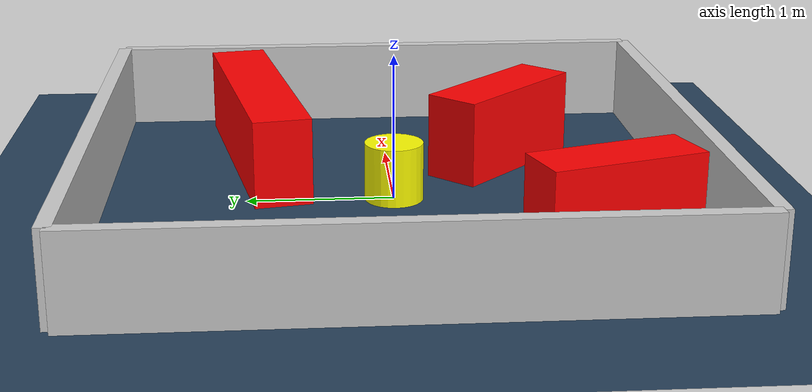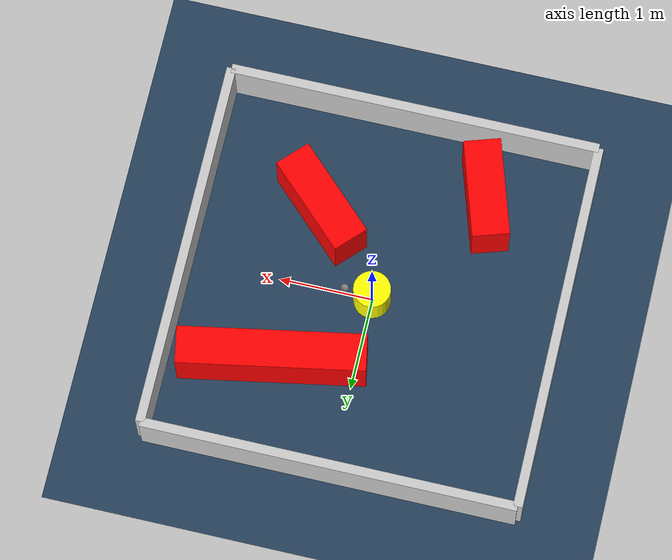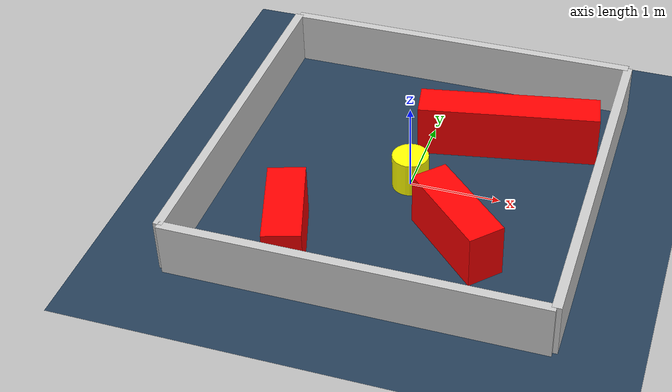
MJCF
<?xml version="1.0" ?>
<mujoco model="generated_environment">
  <option timestep="0.01" integrator="RK4" cone="elliptic"/>
  <default>
    <geom density="1"/>
  </default>
  <asset>
    <texture builtin="gradient" height="3072" rgb1="0.3 0.5 0.7" rgb2="0 0 0" type="skybox" width="512"/>
    <texture builtin="checker" height="300" mark="edge" markrgb="0.8 0.8 0.8" name="groundplane" rgb1="0.2 0.3 0.4" rgb2="0.1 0.2 0.3" type="2d" width="300"/>
    <material name="groundplane" reflectance="0.2" texrepeat="5 5" texture="groundplane" texuniform="true"/>
    <material name="robot" rgba="0.0 1.0 0.0 1"/>
  </asset>
  <worldbody>
    <light dir="0 0 -1" directional="true" pos="0 0 1.5"/>
    <geom condim="4" friction="1.0 0.005 0.001" material="groundplane" name="floor" size="0 0 0.05" type="plane"/>
    <body name="walls">
      <geom name="wall_1" condim="4" pos="-2.0 0.0 0.3" rgba="0.800000011920929 0.800000011920929 0.800000011920929 1.0" size="0.05 2.0 0.3" type="box"/>
      <geom name="wall_2" condim="4" pos="2.0 0.0 0.3" rgba="0.800000011920929 0.800000011920929 0.800000011920929 1.0" size="0.05 2.0 0.3" type="box"/>
      <geom name="wall_3" condim="4" pos="0.0 -2.0 0.3" rgba="0.800000011920929 0.800000011920929 0.800000011920929 1.0" size="2.0 0.05 0.3" type="box"/>
      <geom name="wall_4" condim="4" pos="0.0 2.0 0.3" rgba="0.800000011920929 0.800000011920929 0.800000011920929 1.0" size="2.0 0.05 0.3" type="box"/>
    </body>
    <body name="robot">
      <joint name="joint_x" type="slide" pos="0 0 0" axis="1 0 0"/>
      <joint name="joint_y" type="slide" pos="0 0 0" axis="0 1 0"/>
      <geom name="robot" type="sphere" pos="0.3 0.0 0.2" size="0.05" mass="5." friction="1.0 0.005 0.0001" condim="4" rgba="0.5 0.5 0.5 1.0"/>
      <site name="sensor_ball"/>
    </body>
    <body name="obstacle_movable_1">
      <geom name="obstacle_movable_1" condim="4" pos="0.0 0.0 0.2" euler="0 0 0.0" friction="1.0 0.005 0.001" rgba="1.0 1.0 0.0 1.0" size="0.2 0.2 0.0" type="cylinder" mass="0.1"/>
      <joint type="free"/>
    </body>
    <body name="obstacle_2_static">
      <geom name="obstacle_2_static" condim="4" pos="0.7359756556859101 -0.8174514328813893 0.3" euler="0 0 136.080784771977" friction="1.0 0.005 0.001" rgba="1 0 0 1" size="0.5707484087506287 0.2 0.3" type="box"/>
    </body>
    <body name="obstacle_3_static">
      <geom name="obstacle_3_static" condim="4" pos="-0.9354326974309145 -1.3083532696726379 0.3" euler="0 0 287.69811308872556" friction="1.0 0.005 0.001" rgba="1 0 0 1" size="0.5309945228072117 0.2 0.3" type="box"/>
    </body>
    <body name="obstacle_4_static">
      <geom name="obstacle_4_static" condim="4" pos="0.8624813086545136 0.926110584582829 0.3" euler="0 0 10.40601555675519" friction="1.0 0.005 0.001" rgba="1 0 0 1" size="0.9964098319525985 0.2 0.3" type="box"/>
    </body>
  </worldbody>
  <actuator>
    <motor name="actuator_x" joint="joint_x" gear="1" ctrlrange="-1 1"/>
    <motor name="actuator_y" joint="joint_y" gear="1" ctrlrange="-1 1"/>
  </actuator>
</mujoco>
